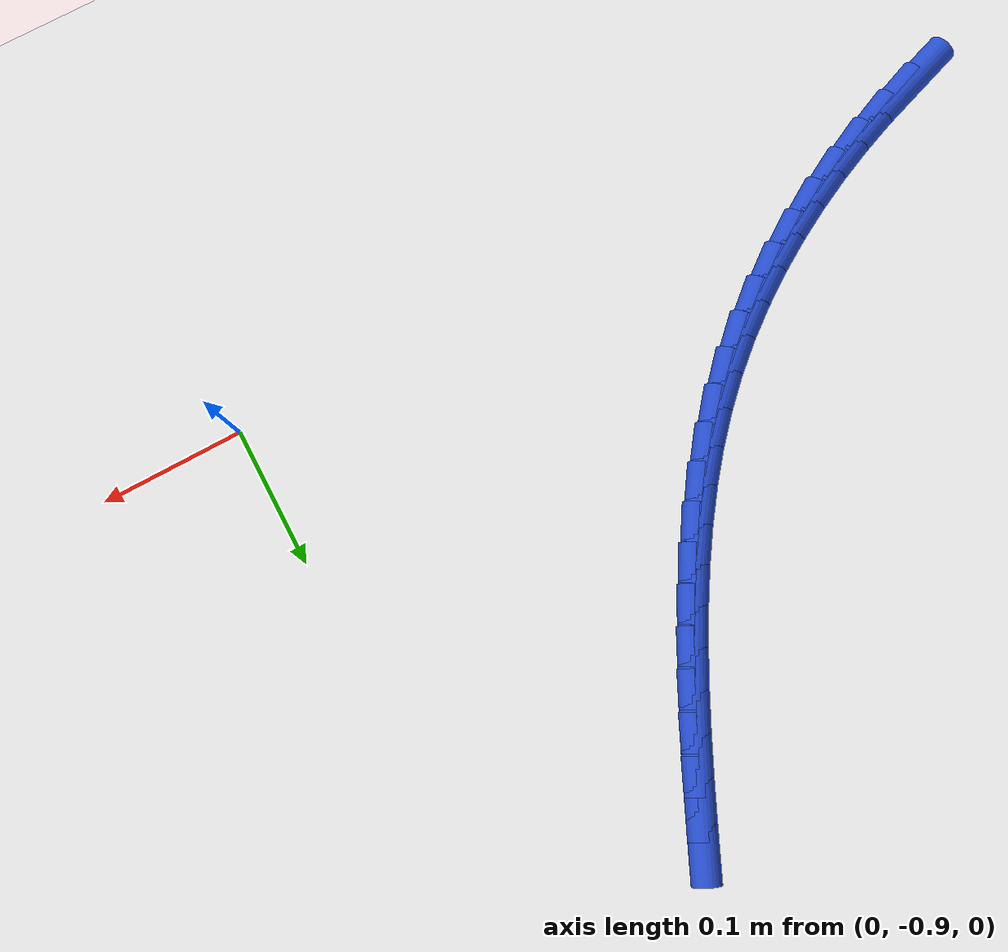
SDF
<sdf version="1.6">
 <world name="default">
  <model name="ground_plane">
   <static>1</static>
   <link name="link">
    <collision name="collision">
     <geometry><plane><normal>0 0 1</normal><size>100 100</size></plane></geometry>
     <surface><friction><ode><mu>100</mu><mu2>50</mu2></ode></friction></surface>
    </collision>
    <visual name="visual">
     <cast_shadows>0</cast_shadows>
     <geometry><plane><normal>0 0 1</normal><size>100 100</size></plane></geometry>
     <material>
      <script><uri>file://media/materials/scripts/gazebo.material</uri><name>Gazebo/WhiteGlow</name></script>
     </material>
    </visual>
   </link>
  </model>
  <model name="line">
   <link name="link_209">
    <pose>-0.5173121581180615 -0.8984486372098861 0.01 0 1.57 0.330239727269318</pose>
    <collision name="collision">
     <geometry><cylinder><radius>0.01</radius><length>0.08</length></cylinder></geometry>
    </collision>
    <visual name="visual">
     <material>
      <script><name>Gazebo/Blue</name><uri>file://media/materials/scripts/gazebo.material</uri></script>
     </material>
     <geometry><cylinder><radius>0.01</radius><length>0.08</length></cylinder></geometry>
    </visual>
   </link>
   <link name="link_210">
    <pose>-0.491527850025843 -0.8896099635282978 0.01 0 1.57 0.371944231482466</pose>
    <collision name="collision">
     <geometry><cylinder><radius>0.01</radius><length>0.08</length></cylinder></geometry>
    </collision>
    <visual name="visual">
     <material>
      <script><name>Gazebo/Blue</name><uri>file://media/materials/scripts/gazebo.material</uri></script>
     </material>
     <geometry><cylinder><radius>0.01</radius><length>0.08</length></cylinder></geometry>
    </visual>
   </link>
   <link name="link_211">
    <pose>-0.4661478428043652 -0.8797091828670655 0.01 0 1.57 0.41512875172387415</pose>
    <collision name="collision">
     <geometry><cylinder><radius>0.01</radius><length>0.08</length></cylinder></geometry>
    </collision>
    <visual name="visual">
     <material>
      <script><name>Gazebo/Blue</name><uri>file://media/materials/scripts/gazebo.material</uri></script>
     </material>
     <geometry><cylinder><radius>0.01</radius><length>0.08</length></cylinder></geometry>
    </visual>
   </link>
   <link name="link_212">
    <pose>-0.4412669724270643 -0.8687431264566768 0.01 0 1.57 0.46005247802013716</pose>
    <collision name="collision">
     <geometry><cylinder><radius>0.01</radius><length>0.08</length></cylinder></geometry>
    </collision>
    <visual name="visual">
     <material>
      <script><name>Gazebo/Blue</name><uri>file://media/materials/scripts/gazebo.material</uri></script>
     </material>
     <geometry><cylinder><radius>0.01</radius><length>0.08</length></cylinder></geometry>
    </visual>
   </link>
   <link name="link_213">
    <pose>-0.416980074867376 -0.8567086255276202 0.01 0 1.57 0.5069710694010378</pose>
    <collision name="collision">
     <geometry><cylinder><radius>0.01</radius><length>0.08</length></cylinder></geometry>
    </collision>
    <visual name="visual">
     <material>
      <script><name>Gazebo/Blue</name><uri>file://media/materials/scripts/gazebo.material</uri></script>
     </material>
     <geometry><cylinder><radius>0.01</radius><length>0.08</length></cylinder></geometry>
    </visual>
   </link>
   <link name="link_214">
    <pose>-0.39338198609873665 -0.843602511310385 0.01 0 1.57 0.5561328625320535</pose>
    <collision name="collision">
     <geometry><cylinder><radius>0.01</radius><length>0.08</length></cylinder></geometry>
    </collision>
    <visual name="visual">
     <material>
      <script><name>Gazebo/Blue</name><uri>file://media/materials/scripts/gazebo.material</uri></script>
     </material>
     <geometry><cylinder><radius>0.01</radius><length>0.08</length></cylinder></geometry>
    </visual>
   </link>
   <link name="link_215">
    <pose>-0.37056754209458237 -0.8294216150354593 0.01 0 1.57 0.6077727055739193</pose>
    <collision name="collision">
     <geometry><cylinder><radius>0.01</radius><length>0.08</length></cylinder></geometry>
    </collision>
    <visual name="visual">
     <material>
      <script><name>Gazebo/Blue</name><uri>file://media/materials/scripts/gazebo.material</uri></script>
     </material>
     <geometry><cylinder><radius>0.01</radius><length>0.08</length></cylinder></geometry>
    </visual>
   </link>
   <link name="link_216">
    <pose>-0.34863157882834916 -0.8141627679333318 0.01 0 1.57 0.662102997535877</pose>
    <collision name="collision">
     <geometry><cylinder><radius>0.01</radius><length>0.08</length></cylinder></geometry>
    </collision>
    <visual name="visual">
     <material>
      <script><name>Gazebo/Blue</name><uri>file://media/materials/scripts/gazebo.material</uri></script>
     </material>
     <geometry><cylinder><radius>0.01</radius><length>0.08</length></cylinder></geometry>
    </visual>
   </link>
   <link name="link_217">
    <pose>-0.3276689322734731 -0.7978228012344908 0.01 0 1.57 0.7193016157098738</pose>
    <collision name="collision">
     <geometry><cylinder><radius>0.01</radius><length>0.08</length></cylinder></geometry>
    </collision>
    <visual name="visual">
     <material>
      <script><name>Gazebo/Blue</name><uri>file://media/materials/scripts/gazebo.material</uri></script>
     </material>
     <geometry><cylinder><radius>0.01</radius><length>0.08</length></cylinder></geometry>
    </visual>
   </link>
   <link name="link_218">
    <pose>-0.3077744384033902 -0.7803985461694252 0.01 0 1.57 0.7790917483963749</pose>
    <collision name="collision">
     <geometry><cylinder><radius>0.01</radius><length>0.08</length></cylinder></geometry>
    </collision>
    <visual name="visual">
     <material>
      <script><name>Gazebo/Blue</name><uri>file://media/materials/scripts/gazebo.material</uri></script>
     </material>
     <geometry><cylinder><radius>0.01</radius><length>0.08</length></cylinder></geometry>
    </visual>
   </link>
   <link name="link_219">
    <pose>-0.2890329215041927 -0.7618919345408742 0.01 0 1.57 0.8370008395186297</pose>
    <collision name="collision">
     <geometry><cylinder><radius>0.01</radius><length>0.08</length></cylinder></geometry>
    </collision>
    <visual name="visual">
     <material>
      <script><name>Gazebo/Blue</name><uri>file://media/materials/scripts/gazebo.material</uri></script>
     </material>
     <geometry><cylinder><radius>0.01</radius><length>0.08</length></cylinder></geometry>
    </visual>
   </link>
   <link name="link_220">
    <pose>-0.2714199810219254 -0.7423605440351475 0.01 0 1.57 0.8899919129409394</pose>
    <collision name="collision">
     <geometry><cylinder><radius>0.01</radius><length>0.08</length></cylinder></geometry>
    </collision>
    <visual name="visual">
     <material>
      <script><name>Gazebo/Blue</name><uri>file://media/materials/scripts/gazebo.material</uri></script>
     </material>
     <geometry><cylinder><radius>0.01</radius><length>0.08</length></cylinder></geometry>
    </visual>
   </link>
   <link name="link_221">
    <pose>-0.2548440064923534 -0.7218961932203957 0.01 0 1.57 0.9378051612209639</pose>
    <collision name="collision">
     <geometry><cylinder><radius>0.01</radius><length>0.08</length></cylinder></geometry>
    </collision>
    <visual name="visual">
     <material>
      <script><name>Gazebo/Blue</name><uri>file://media/materials/scripts/gazebo.material</uri></script>
     </material>
     <geometry><cylinder><radius>0.01</radius><length>0.08</length></cylinder></geometry>
    </visual>
   </link>
   <link name="link_222">
    <pose>-0.23921240495527463 -0.7005912012089316 0.01 0 1.57 0.9803612444323786</pose>
    <collision name="collision">
     <geometry><cylinder><radius>0.01</radius><length>0.08</length></cylinder></geometry>
    </collision>
    <visual name="visual">
     <material>
      <script><name>Gazebo/Blue</name><uri>file://media/materials/scripts/gazebo.material</uri></script>
     </material>
     <geometry><cylinder><radius>0.01</radius><length>0.08</length></cylinder></geometry>
    </visual>
   </link>
   <link name="link_223">
    <pose>-0.22443258345048742 -0.6785378871130701 0.01 0 1.57 1.017683978589651</pose>
    <collision name="collision">
     <geometry><cylinder><radius>0.01</radius><length>0.08</length></cylinder></geometry>
    </collision>
    <visual name="visual">
     <material>
      <script><name>Gazebo/Blue</name><uri>file://media/materials/scripts/gazebo.material</uri></script>
     </material>
     <geometry><cylinder><radius>0.01</radius><length>0.08</length></cylinder></geometry>
    </visual>
   </link>
   <link name="link_224">
    <pose>-0.21041194901778967 -0.655828570045124 0.01 0 1.57 1.049864592516311</pose>
    <collision name="collision">
     <geometry><cylinder><radius>0.01</radius><length>0.08</length></cylinder></geometry>
    </collision>
    <visual name="visual">
     <material>
      <script><name>Gazebo/Blue</name><uri>file://media/materials/scripts/gazebo.material</uri></script>
     </material>
     <geometry><cylinder><radius>0.01</radius><length>0.08</length></cylinder></geometry>
    </visual>
   </link>
   <link name="link_225">
    <pose>-0.1970579086969796 -0.6325555691174074 0.01 0 1.57 1.077030903647638</pose>
    <collision name="collision">
     <geometry><cylinder><radius>0.01</radius><length>0.08</length></cylinder></geometry>
    </collision>
    <visual name="visual">
     <material>
      <script><name>Gazebo/Blue</name><uri>file://media/materials/scripts/gazebo.material</uri></script>
     </material>
     <geometry><cylinder><radius>0.01</radius><length>0.08</length></cylinder></geometry>
    </visual>
   </link>
   <link name="link_226">
    <pose>-0.18427786952785524 -0.6088112034422339 0.01 0 1.57 1.0993225154551625</pose>
    <collision name="collision">
     <geometry><cylinder><radius>0.01</radius><length>0.08</length></cylinder></geometry>
    </collision>
    <visual name="visual">
     <material>
      <script><name>Gazebo/Blue</name><uri>file://media/materials/scripts/gazebo.material</uri></script>
     </material>
     <geometry><cylinder><radius>0.01</radius><length>0.08</length></cylinder></geometry>
    </visual>
   </link>
   <link name="link_227">
    <pose>-0.1719792385502147 -0.5846877921319173 0.01 0 1.57 1.116871866859509</pose>
    <collision name="collision">
     <geometry><cylinder><radius>0.01</radius><length>0.08</length></cylinder></geometry>
    </collision>
    <visual name="visual">
     <material>
      <script><name>Gazebo/Blue</name><uri>file://media/materials/scripts/gazebo.material</uri></script>
     </material>
     <geometry><cylinder><radius>0.01</radius><length>0.08</length></cylinder></geometry>
    </visual>
   </link>
   <link name="link_228">
    <pose>-0.16006942280385617 -0.5602776542987714 0.01 0 1.57 1.1297903184503013</pose>
    <collision name="collision">
     <geometry><cylinder><radius>0.01</radius><length>0.08</length></cylinder></geometry>
    </collision>
    <visual name="visual">
     <material>
      <script><name>Gazebo/Blue</name><uri>file://media/materials/scripts/gazebo.material</uri></script>
     </material>
     <geometry><cylinder><radius>0.01</radius><length>0.08</length></cylinder></geometry>
    </visual>
   </link>
   <link name="link_229">
    <pose>-0.14845582932857765 -0.5356731090551098 0.01 0 1.57 1.1381582578822138</pose>
    <collision name="collision">
     <geometry><cylinder><radius>0.01</radius><length>0.08</length></cylinder></geometry>
    </collision>
    <visual name="visual">
     <material>
      <script><name>Gazebo/Blue</name><uri>file://media/materials/scripts/gazebo.material</uri></script>
     </material>
     <geometry><cylinder><radius>0.01</radius><length>0.08</length></cylinder></geometry>
    </visual>
   </link>
  </model>
 </world>
</sdf>
